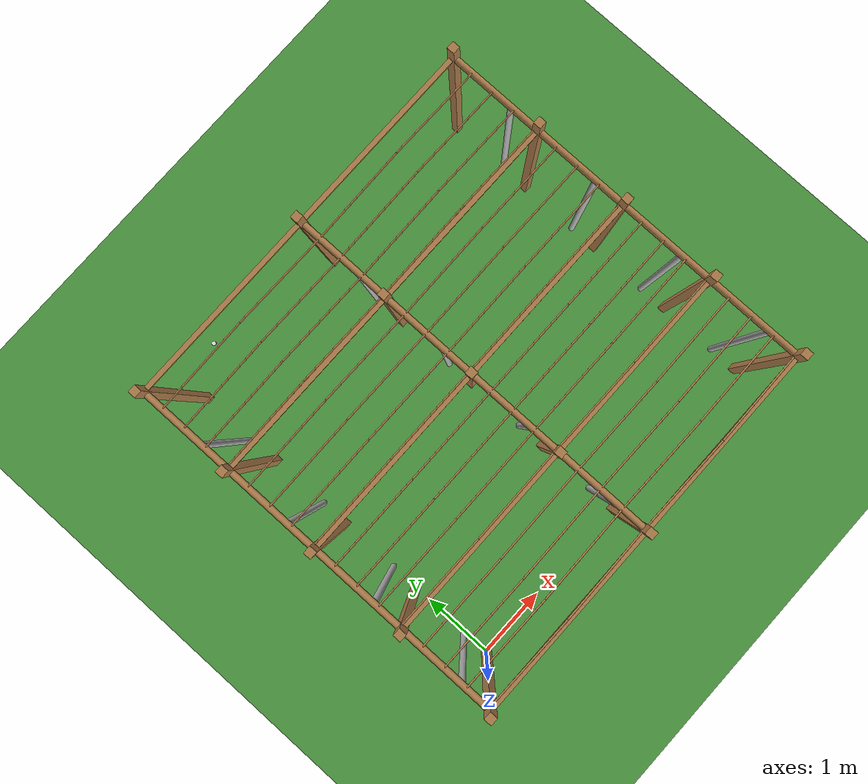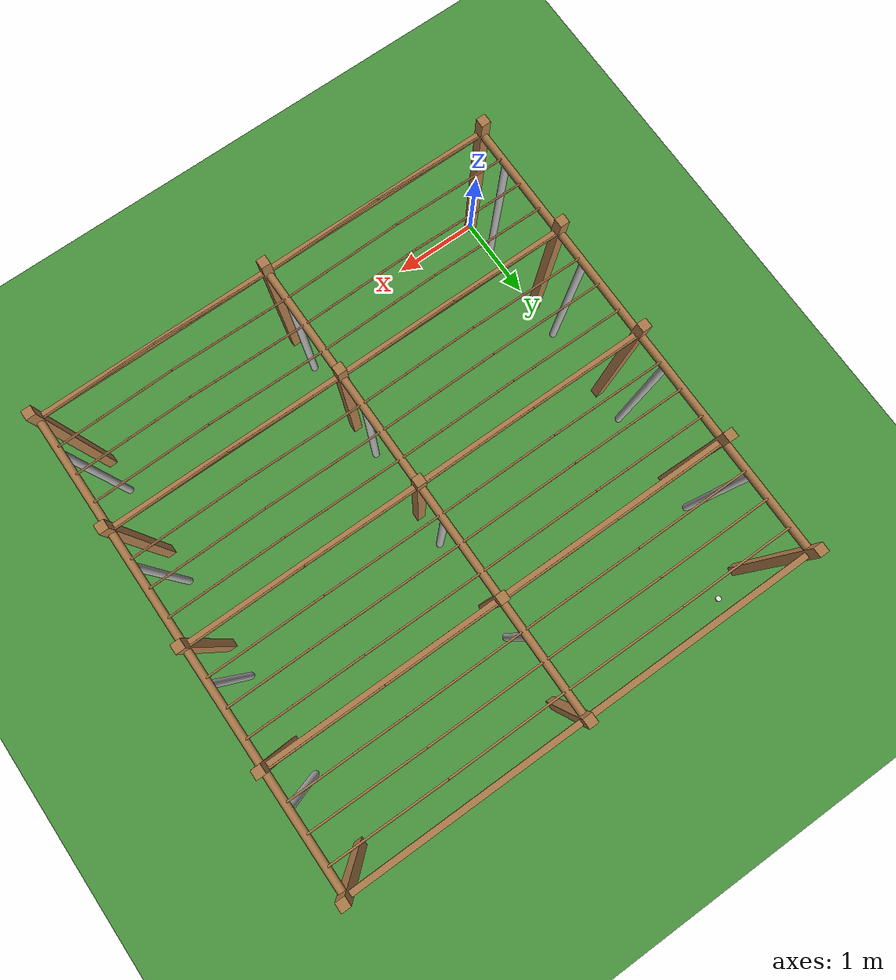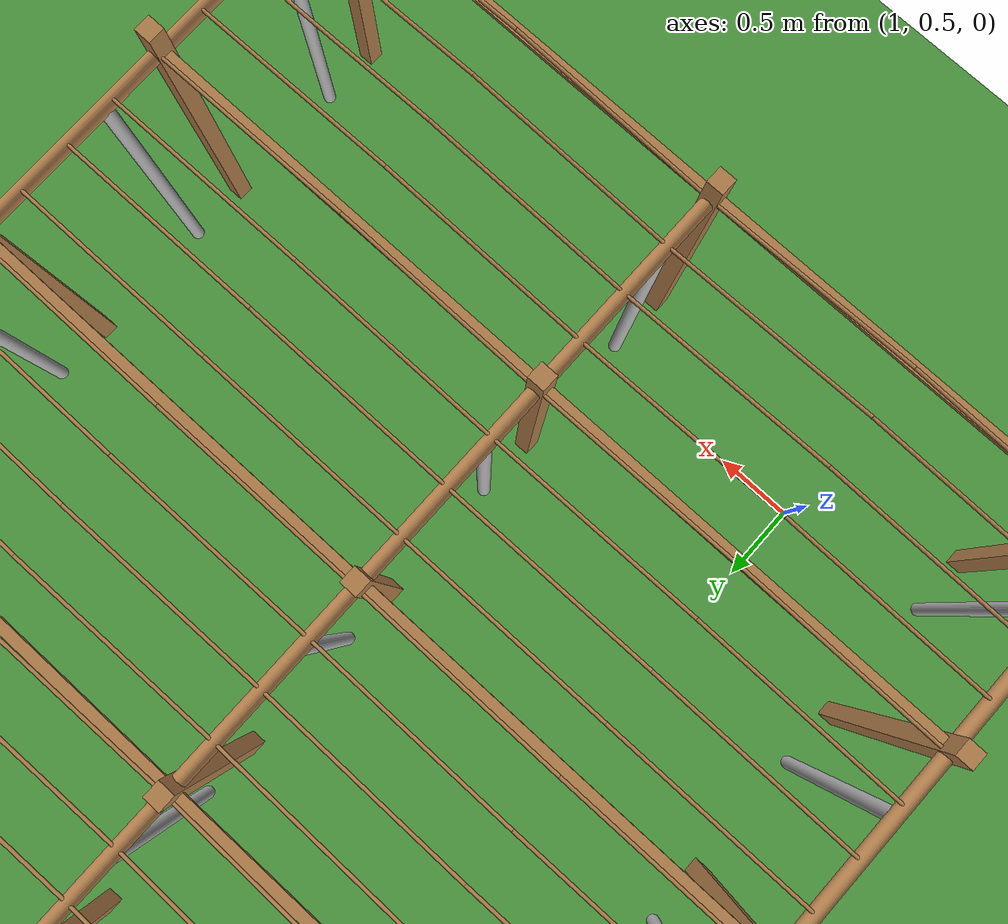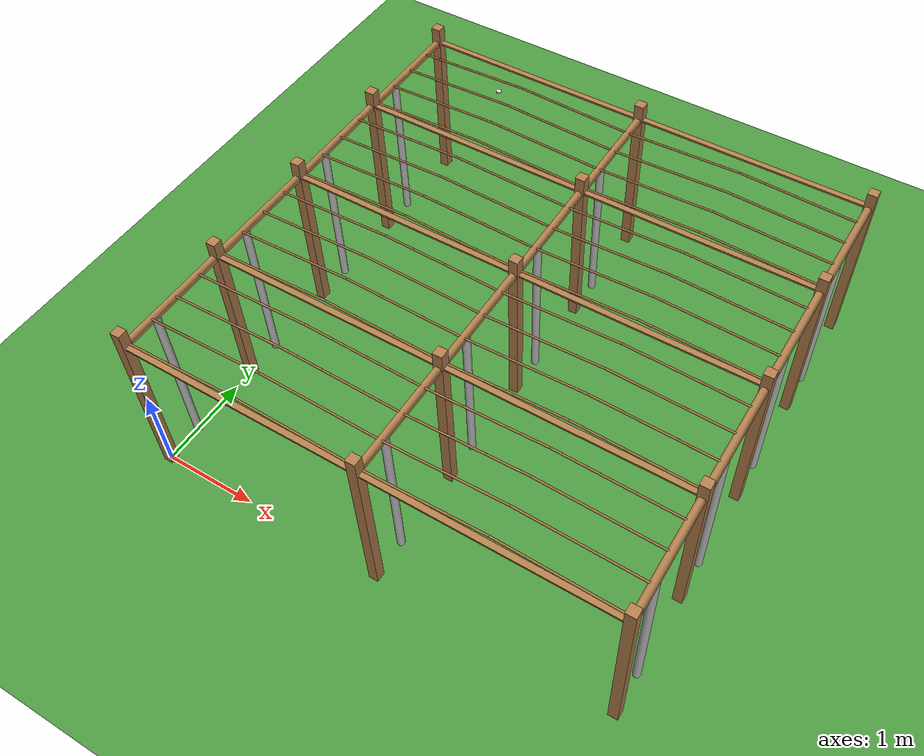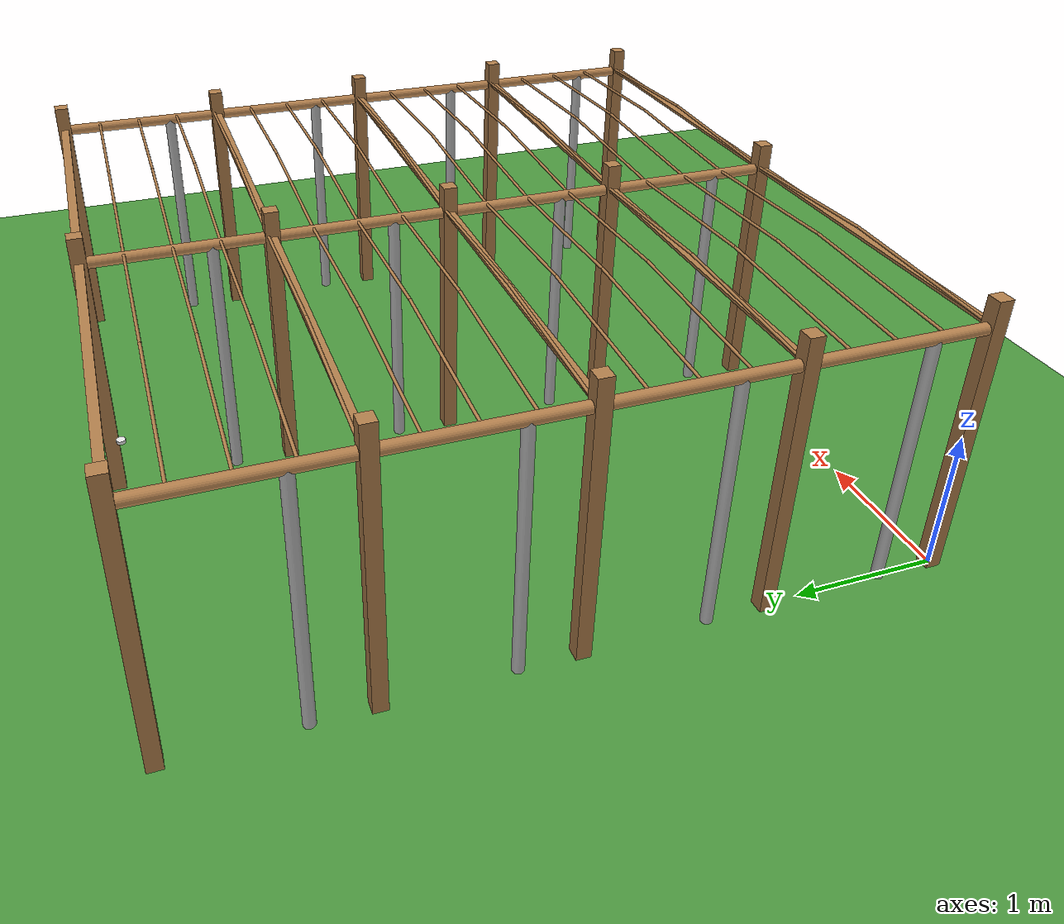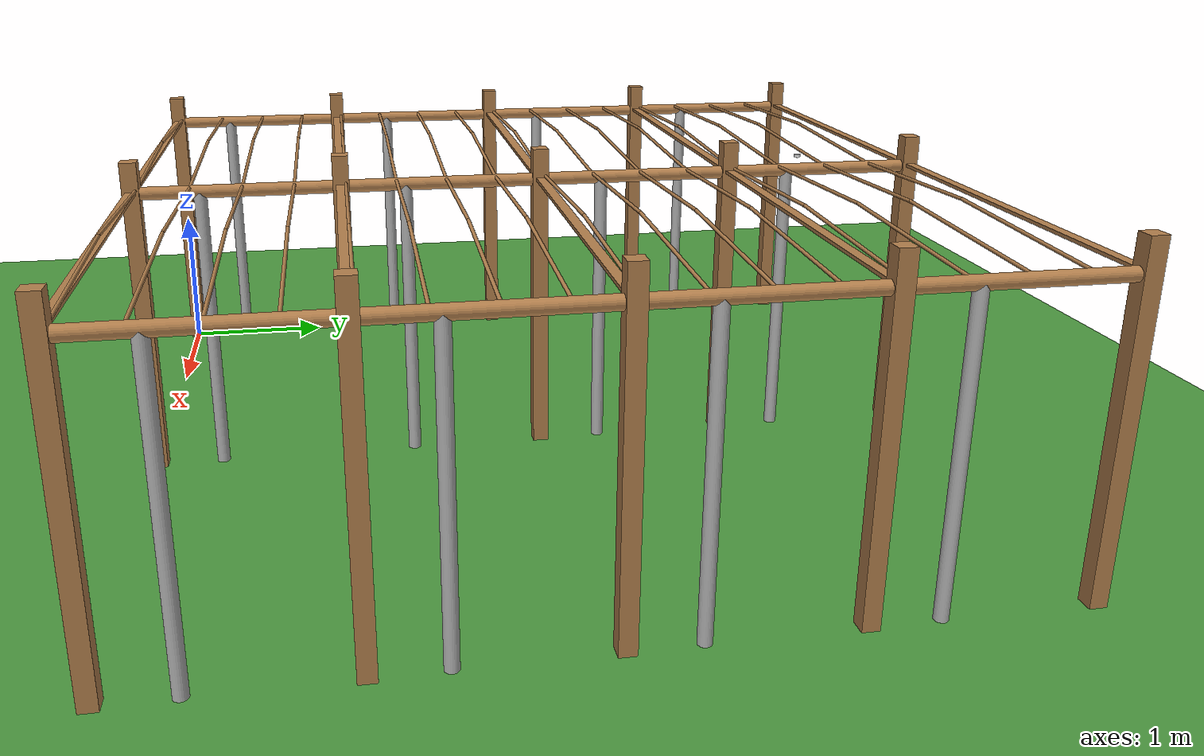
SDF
<!-- This world contains the pergola model and a population of flowers as defined by the flower_population model. -->
<?xml version="1.0"?>
<sdf version="1.4">
<world name="flower_population">
	<include>
		<uri>model://sun</uri>
		<pose>0 50 10 0 0 0</pose>
	</include>

	<include>
		<uri>model://orchard_ground_plane</uri>
	</include>

	<include>
		<uri>model://pergola_unpopulated</uri>
	</include>

	<include>
		<uri>model://flower_population</uri>
	</include>

</world>
</sdf>

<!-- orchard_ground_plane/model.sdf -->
<sdf version="1.5">
  <model name="orchard_ground_plane">
    <static>true</static>
    <link name="link">
      <collision name="collision">
        <geometry>
          <plane>
            <normal>0 0 1</normal>
            <size>100 100</size>
          </plane>
        </geometry>
        <surface>
          <friction>
            <ode>
              <mu>100</mu>
              <mu2>50</mu2>
            </ode>
          </friction>
        </surface>
      </collision>
      <visual name="visual">
        <cast_shadows>false</cast_shadows>
        <geometry>
          <plane>
            <normal>0 0 1</normal>
            <size>100 100</size>
          </plane>
        </geometry>
        <material>
          <script>
            <uri>model://orchard_ground_plane/materials/scripts</uri>
            <uri>model://orchard_ground_plane/materials/textures</uri>
            <name>OrchardGround/FlatGrass</name>
          </script>
        </material>
      </visual>
    </link>
  </model>
</sdf>

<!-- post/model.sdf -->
<sdf version='1.4'>
  <model name="post">
  <static>true</static>
    <link name="post">
      <pose>0 0 1 0 0 0</pose>

      <collision name="collision">
        <geometry>
          <box>
            <size>.1 .1 2</size>
          </box>
        </geometry>
      </collision>

      <visual name="visual">
        <geometry>
          <box>
            <size>.1 .1 2</size>
          </box>
        </geometry>
        <material>
			<script>
				<name>Gazebo/Wood</name>
			</script>
        </material>
      </visual>

    <inertial>
      <pose>0 0 1 0 0 0</pose>
      <mass>1</mass>
      <inertia>
        <ixx>1.0</ixx>
        <ixy>0.0</ixy>
        <ixz>0.0</ixz>
        <iyy>1.0</iyy>
        <iyz>0.0</iyz>
        <izz>1</izz>
      </inertia>
    </inertial>

    </link>

  </model>
</sdf>

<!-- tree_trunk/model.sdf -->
<sdf version='1.4'>
  <model name="tree_trunk">
  <static>true</static>
    <link name="trunk">
      <pose>0 0 0.9 0 0 0</pose>

      <collision name="collision">
        <geometry>
          <cylinder>
              <radius>.04</radius> <length>1.8</length>
          </cylinder>
        </geometry>
      </collision>

      <visual name="visual">
        <geometry>
          <cylinder>
              <radius>.04</radius> <length>1.8</length>
          </cylinder>
        </geometry>
        <material>
		<script>
			<uri>model://tree_trunk/materials/scripts</uri>
			<uri>model://tree_trunk/materials/textures</uri>
			<name>Tree/Bark</name>
		</script>
        </material>
      </visual>

    <inertial>
      <pose>0 0 0 0 0 0</pose>
      <mass>20</mass>
      <inertia>
        <ixx>0.4</ixx>
        <ixy>0.0</ixy>
        <ixz>0.0</ixz>
        <iyy>0.4</iyy>
        <iyz>0.0</iyz>
        <izz>0.2</izz>
      </inertia>
    </inertial>

    </link>

  </model>
</sdf>

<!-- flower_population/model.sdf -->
<sdf version='1.4'>
  <model name="flower_population">
	<static>true</static>

        <link name="centre_0">
		  <pose>0.8435467688856609 4.894765390049024 1.5362440744913275 0 0 0</pose>
          <collision name="centre_collision_0">
            <geometry><sphere><radius>0.02</radius></sphere></geometry>
          </collision>
          <visual name="visual">
            <geometry><cylinder><radius>0.025</radius><length>0.02</length></cylinder></geometry>
            <material><script><name>Gazebo/White</name></script></material>
          </visual>
        <inertial>
          <pose>0 0 0 0 0 0</pose>
          <mass>0.0001</mass>
          <inertia>
            <ixx>1.6000000000000004e-08</ixx><ixy>0.0</ixy><ixz>0.0</ixz><iyy>1.6000000000000004e-08</iyy><iyz>0.0</iyz><izz>1.6000000000000004e-08</izz>
          </inertia>
        </inertial>
        <!-- Sensor for any contact with centre (stigma) of flower -->
		<sensor name='stigma_contact_0' type='contact'>
	      <plugin name="contact_plugin" filename="libcontact_plugin.so"/>
		  <contact>
			<collision>centre_collision_0</collision>
			<topic>stigma_contact_topic_0</topic>
		  </contact>
		</sensor>
        </link>

  </model>
</sdf>
